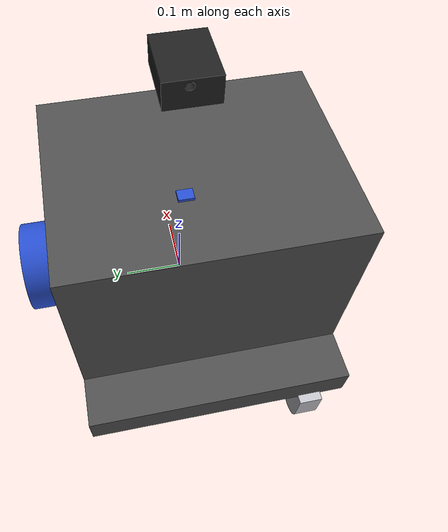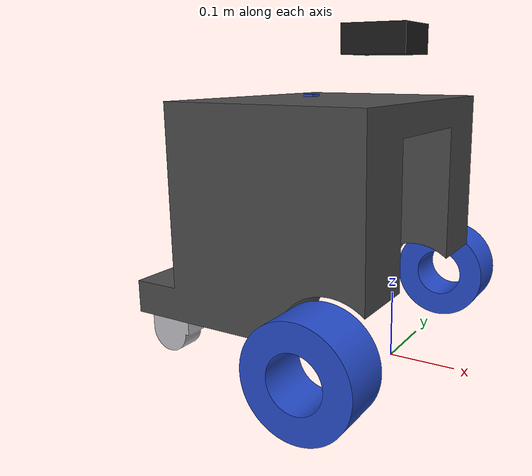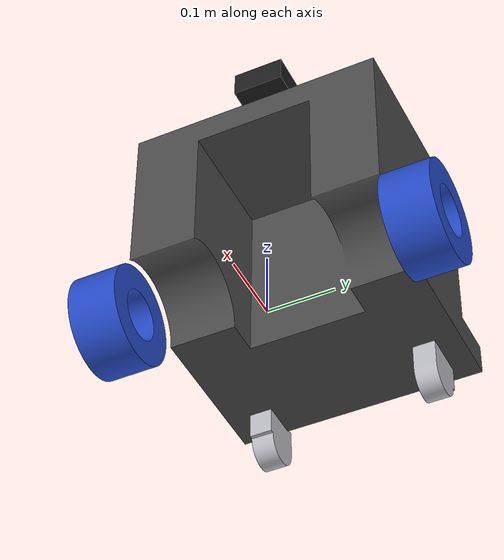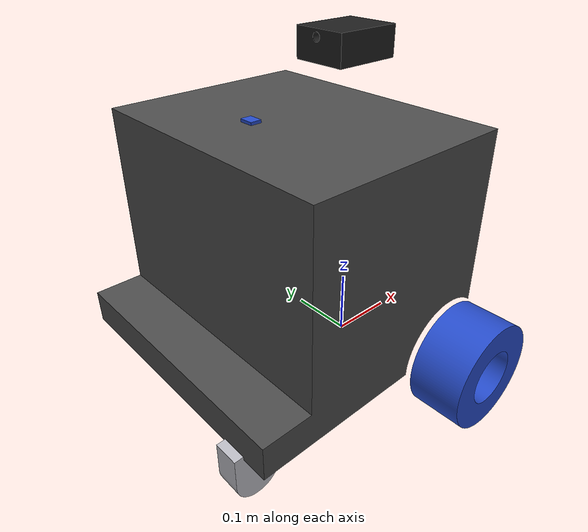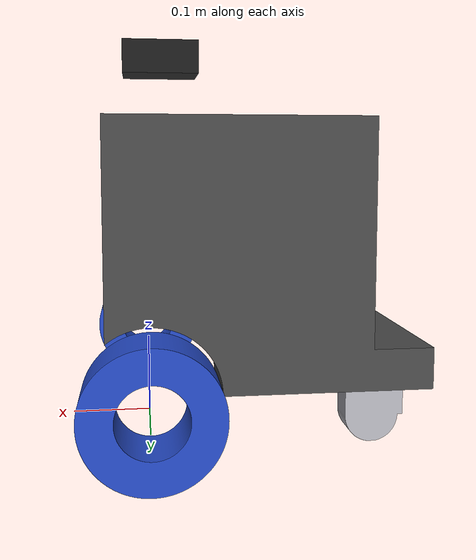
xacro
<?xml version="1.0"?>
<robot name="zbig" xmlns:xacro="http://ros.org/wiki/xacro">

    <xacro:property name="wheel_radius" value="0.074"/>
    <xacro:property name="wheel_offset_y" value="0.235"/>
    <xacro:property name="wheel_offset_z" value="0.0225"/>

    <xacro:property name="caster_wheel_radius" value="0.051"/>
    <xacro:property name="caster_wheel_offset_x" value="0.280"/>
    <xacro:property name="caster_wheel_offset_y" value="0.138"/>
    <xacro:property name="caster_wheel_offset_z" value="${wheel_offset_z - wheel_radius + caster_wheel_radius}"/>

    <xacro:property name="imu_roll" value="0.0"/>
    <xacro:property name="imu_pitch" value="0.0"/>
    <xacro:property name="imu_yaw" value="0.0"/>

    <xacro:property name="lidar_roll" value="0.0"/>
    <xacro:property name="lidar_pitch" value="0.0"/>
    <xacro:property name="lidar_yaw" value="0.0"/>

    <xacro:property name="chassis_mass" value="10.0"/>
    <xacro:property name="wheel_mass" value="0.05"/>
    <xacro:property name="caster_wheel_mass" value="0.01"/>

  <!-- BASE_FOOTPRINT LINK -->

  <link name="base_footprint"></link>

   <!-- BASE LINK -->

  <link name="base_link">
    <inertial>
      <origin xyz="-0.070489 -0.000718 0.040699" rpy="0.0 0.0 0.0" />
      <mass value="${chassis_mass}"/>
      <inertia ixx="0.4947" ixy="0.00" ixz="-0.1925"
               iyy="0.6072" iyz="0.00"
               izz="0.4081" />
    </inertial>
    <visual name='base_link_visual'>
      <origin xyz="0 0 0" rpy="0 0 0" />
      <geometry>
        <mesh filename="file://$(find zbig_description)/meshes/collision-chassis-bigbot1.stl" />
      </geometry>
      <material name="dark_grey"/>
    </visual>
    <collision>
      <origin xyz="0 0 0" rpy="0 0 0" />
      <geometry>
        <mesh filename="file://$(find zbig_description)/meshes/collision-chassis-bigbot1.stl" />
      </geometry>
    </collision>
  </link>

   <joint name="base_joint" type="fixed">
    <parent link="base_footprint"/>
    <child link="base_link" />
    <origin xyz="0 0 ${wheel_radius}" rpy="0 0 0"/>
  </joint>

<!-- RIGHT WHEEL LINK -->

  <link name="wheel_right_link">
    <inertial>
      <origin xyz="0 0.0 0" rpy="0 0 0" />
      <mass value="${wheel_mass}" />
      <inertia ixx="1.88176298336665E-05" ixy="-4.8444933029987E-10" ixz="1.88163708851143E-08"
               iyy="3.11510738647764E-05" iyz="-6.93560663069607E-11"
               izz="1.8801969558182E-05" />
    </inertial>
    <visual>
      <origin xyz="-0.0 0.0 0.0" rpy="1.57 0 0" />
      <geometry>
        <mesh filename="file://$(find zbig_description)/meshes/cbot/collision-6inch-wheel.stl" />
      </geometry>
      <material name="blue"/>
    </visual>
    <collision>
      <origin xyz="0 0 0" rpy="1.57 0 0" />
      <geometry>
        <sphere radius="${wheel_radius}"/>
      </geometry>
    </collision>
  </link>

  <joint name="wheel_right_joint" type="continuous">
    <origin xyz="0 ${-wheel_offset_y} 0" rpy="0 0 0" />
    <parent link="base_link" />
    <child link="wheel_right_link" />
    <axis xyz="0 1 0" />
  </joint>

<!-- LEFT WHEEL LINK -->

  <link
    name="wheel_left_link">
    <inertial>
      <origin xyz="0 0.0 0" rpy="0 0 0" />
      <mass value="${wheel_mass}" />
      <inertia ixx="1.8792911368909E-05"  ixy="3.31256392204584E-10" ixz="-1.14082001662767E-08"
               iyy="3.11510738759073E-05" iyz="-3.60499245082192E-10"
               izz="1.88266886146847E-05" />
    </inertial>
    <visual>
      <origin xyz="0 0.0 0" rpy="-1.57 0 0" />
      <geometry>
        <mesh filename="file://$(find zbig_description)/meshes/cbot/collision-6inch-wheel.stl" />
      </geometry>
      <material name="blue"/>
    </visual>
    <collision>
      <origin xyz="0 0 0" rpy="-1.57 0 0" />
      <geometry>
        <sphere radius="${wheel_radius}"/>
      </geometry>
    </collision>
  </link>

  <joint name="wheel_left_joint" type="continuous">
    <origin xyz="0 ${wheel_offset_y}  0" rpy="0 0 0" />
    <parent link="base_link" />
    <child link="wheel_left_link" />
    <axis xyz="0 1 0" />
  </joint>

<!-- RIGHT CASTER WHEEL LINK -->

  <link name="caster_right_link">
    <inertial>
      <origin xyz=".000112 -0.0155 -.00818" rpy="0 0 0" />
      <mass value="0.027976" />
      <inertia ixx="0.000019" ixy="0" ixz="0"
               iyy="0.000007"  iyz="0.000006"
               izz="0.000014" />
    </inertial>
    <visual>
      <origin xyz="0 ${wheel_offset_z} 0" rpy="0 1.57 0" />
      <geometry>
        <mesh filename="file://$(find zbig_description)/meshes/cbot/visual-caster-narrow1.stl" />
      </geometry>
      <material name="silver"/>
    </visual>
    <collision>
      <origin xyz="0 0 0" rpy="0 0 0" />
      <geometry>
        <sphere radius="${wheel_radius}"/>
      </geometry>
    </collision>
  </link>

  <joint name="caster_right_joint" type="fixed">
    <origin xyz="${-caster_wheel_offset_x} ${-caster_wheel_offset_y} ${-caster_wheel_offset_z}" rpy="1.57 0 1.57" />
    <parent link="base_link" />
    <child link="caster_right_link" />
    <axis xyz="0 0 0" />
  </joint>

<!-- LEFT CASTER WHEEL LINK -->

  <link name="caster_left_link">
    <inertial>
      <origin xyz=".000112 -0.0155 -.00818" rpy="0 0 0" />
      <mass value="0.027976" />
      <inertia ixx="0.000019" ixy="0" ixz="0"
               iyy="0.000007"  iyz="0.000006"
               izz="0.000014" />
    </inertial>
    <visual>
      <origin xyz="0 ${wheel_offset_z} 0" rpy="0 -1.57 0.0" />
      <geometry>
         <mesh filename="file://$(find zbig_description)/meshes/cbot/visual-caster-narrow1.stl" />
      </geometry>
      <material name="silver"/>
    </visual>
    <collision>
      <origin xyz="0 0 0" rpy="0 0 0" />
      <geometry>
        <sphere radius="${wheel_radius}"/>
      </geometry>
    </collision>
  </link>

  <joint name="caster_left_joint" type="fixed">
    <origin xyz="${-caster_wheel_offset_x} ${caster_wheel_offset_y} ${-caster_wheel_offset_z}" rpy="1.57 0 1.57" />
    <parent link="base_link" />
    <child link="caster_left_link" />
    <axis xyz="0 0 0" />
  </joint>

<!-- IMU LINK -->

  <link name="imu_link">
    <inertial>
      <origin xyz="-0.00552433659106688 0.000168210391520346 0.000514000497342681" rpy="0 0 0" />
      <mass value="0.000528415362211671" />
      <inertia ixx="1.46176048428261E-08" ixy="1.40015117949421E-10" ixz="-1.99633872937403E-12"
               iyy="8.59662482954888E-09" iyz="7.52375112767959E-12"
               izz="2.30279421279312E-08" />
    </inertial>
    <visual>
      <origin xyz="0.12 0 -.095" rpy="0 0 0" />
      <geometry>
        <mesh filename="file://$(find zbig_description)/meshes/cbot/collision-imu.stl" />
      </geometry>
      <material name="blue"/>
    </visual>
    <collision>
      <origin xyz="0.1 0 -.10" rpy="${imu_roll} ${imu_pitch} ${imu_yaw}" />
      <geometry>
        <mesh filename="file://$(find zbig_description)/meshes/cbot/collision-imu.stl" />
      </geometry>
    </collision>
  </link>

  <joint name="imu_joint" type="fixed">
    <origin xyz="-0.140 0.023 0.31" rpy="${imu_roll} ${imu_pitch} ${imu_yaw}" />
    <parent link="base_link" />
    <child link="imu_link" />
    <axis xyz="0 0 0" />
  </joint>

<!-- LIDAR LINK -->

  <link name="laser_frame">
    <inertial>
      <origin xyz="0.005399 -0.010876 0.002517" rpy="0 0 ${lidar_yaw}" />
      <mass value="0.07308" />
      <inertia ixx="0.000039" ixy="-0.000011" ixz="0.000003"
               iyy="0.000063" iyz="-0.000005"
               izz="0.000057" />
    </inertial>
    <visual>
      <origin xyz="0 0 0" rpy="1.57 0 0" />
      <geometry>
        <mesh filename="file://$(find zbig_description)/meshes/cbot/collision-lidar.stl" />
      </geometry>
      <material name="black"/>
    </visual>
    <collision>
      <origin xyz="0 0 0" rpy="${lidar_roll} ${lidar_pitch} ${lidar_yaw}" />
      <geometry>
        <mesh filename="file://$(find zbig_description)/meshes/cbot/collision-lidar.stl" />
      </geometry>
    </collision>
  </link>

  <joint name="laser_joint" type="fixed">
    <origin xyz="-0.030 0.000 0.4" rpy="${lidar_roll} ${lidar_pitch} ${lidar_yaw}" />
    <parent link="base_link" />
    <child link="laser_frame" />
    <axis xyz="0 0 0" />
  </joint>

</robot>
